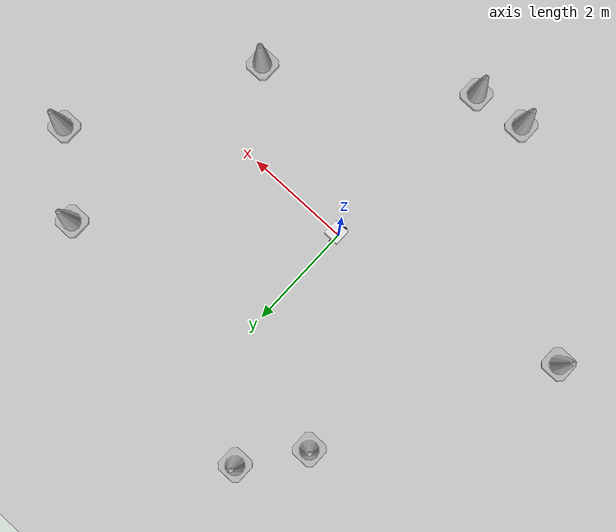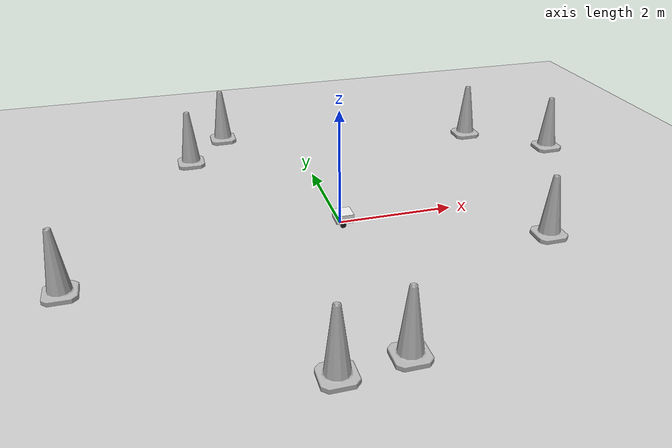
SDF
<sdf version="1.7">
 <world name="default">
  <light name="sun" type="directional">
   <pose>0 0 10 0 -0 0</pose>
   <diffuse>0.8 0.8 0.8 1</diffuse>
   <specular>0.2 0.2 0.2 1</specular>
   <attenuation>
    <range>1000</range>
    <constant>0.9</constant>
    <linear>0.01</linear>
    <quadratic>0.001</quadratic>
   </attenuation>
   <direction>-0.5 0.1 -0.9</direction>
   <spot><inner_angle>0</inner_angle><outer_angle>0</outer_angle><falloff>0</falloff></spot>
  </light>
  <model name="ground_plane">
   <static>1</static>
   <link name="link">
    <collision name="collision">
     <geometry><plane><normal>0 0 1</normal><size>100 100</size></plane></geometry>
     <surface><friction><ode><mu>100</mu><mu2>50</mu2></ode></friction></surface>
    </collision>
    <visual name="visual">
     <cast_shadows>0</cast_shadows>
     <geometry><plane><normal>0 0 1</normal><size>100 100</size></plane></geometry>
     <material>
      <script><uri>file://media/materials/scripts/gazebo.material</uri><name>Gazebo/Grey</name></script>
     </material>
    </visual>
   </link>
  </model>
  <gravity>0 0 -9.8</gravity>
  <magnetic_field>6e-06 2.3e-05 -4.2e-05</magnetic_field>
  <atmosphere type="adiabatic"/>
  <physics type="ode">
   <max_step_size>0.001</max_step_size>
   <real_time_factor>1</real_time_factor>
   <real_time_update_rate>1000</real_time_update_rate>
  </physics>
  <scene><ambient>0.4 0.4 0.4 1</ambient><background>0.7 0.7 0.7 1</background><shadows>1</shadows></scene>
  <spherical_coordinates>
   <surface_model>EARTH_WGS84</surface_model>
   <latitude_deg>0</latitude_deg>
   <longitude_deg>0</longitude_deg>
   <elevation>0</elevation>
   <heading_deg>0</heading_deg>
  </spherical_coordinates>
  <model name="my_bot">
   <link name="base_link">
    <inertial>
     <pose>0.065 0 0.0625 0 -0 0</pose>
     <mass>0.6</mass>
     <inertia>
      <ixx>0.00525625</ixx>
      <ixy>0</ixy>
      <ixz>0.0005625</ixz>
      <iyy>0.00593125</iyy>
      <iyz>0</iyz>
      <izz>0.008275</izz>
     </inertia>
    </inertial>
    <collision name="base_link_fixed_joint_lump__chassis_collision">
     <pose>0.05 0 0.075 0 -0 0</pose>
     <geometry><box><size>0.3 0.3 0.15</size></box></geometry>
    </collision>
    <collision name="base_link_fixed_joint_lump__caster_wheel_collision_1">
     <pose>0.14 0 0 0 -0 0</pose>
     <geometry><sphere><radius>0.05</radius></sphere></geometry>
     <surface><friction><ode><mu>0.001</mu><mu2>0.001</mu2></ode></friction></surface>
    </collision>
    <visual name="base_link_fixed_joint_lump__chassis_visual">
     <pose>0.05 0 0.075 0 -0 0</pose>
     <geometry><box><size>0.3 0.3 0.15</size></box></geometry>
     <material>
      <script><name>Gazebo/White</name><uri>file://media/materials/scripts/gazebo.material</uri></script>
     </material>
    </visual>
    <visual name="base_link_fixed_joint_lump__caster_wheel_visual_1">
     <pose>0.14 0 0 0 -0 0</pose>
     <geometry><sphere><radius>0.05</radius></sphere></geometry>
     <material>
      <script><name>Gazebo/Orange</name><uri>file://media/materials/scripts/gazebo.material</uri></script>
     </material>
    </visual>
   </link>
   <joint name="left_wheel_joint" type="revolute">
    <pose relative_to="base_link">0 0.175 0 -1.5708 0 0</pose>
    <parent>base_link</parent>
    <child>left_wheel</child>
    <axis>
     <xyz>0 0 1</xyz>
     <limit><lower>-1e+16</lower><upper>1e+16</upper></limit>
     <dynamics><spring_reference>0</spring_reference><spring_stiffness>0</spring_stiffness></dynamics>
    </axis>
   </joint>
   <link name="left_wheel">
    <pose relative_to="left_wheel_joint">0 0 0 0 -0 0</pose>
    <inertial>
     <mass>0.1</mass>
     <inertia>
      <ixx>7.58333e-05</ixx>
      <ixy>0</ixy>
      <ixz>0</ixz>
      <iyy>7.58333e-05</iyy>
      <iyz>0</iyz>
      <izz>0.000125</izz>
     </inertia>
    </inertial>
    <collision name="left_wheel_collision">
     <geometry><cylinder><length>0.04</length><radius>0.05</radius></cylinder></geometry>
    </collision>
    <visual name="left_wheel_visual">
     <geometry><cylinder><length>0.04</length><radius>0.05</radius></cylinder></geometry>
     <material>
      <script><name>Gazebo/Black</name><uri>file://media/materials/scripts/gazebo.material</uri></script>
     </material>
    </visual>
   </link>
   <joint name="right_wheel_joint" type="revolute">
    <pose relative_to="base_link">0 -0.175 0 1.5708 -0 0</pose>
    <parent>base_link</parent>
    <child>right_wheel</child>
    <axis>
     <xyz>0 0 -1</xyz>
     <limit><lower>-1e+16</lower><upper>1e+16</upper></limit>
     <dynamics><spring_reference>0</spring_reference><spring_stiffness>0</spring_stiffness></dynamics>
    </axis>
   </joint>
   <link name="right_wheel">
    <pose relative_to="right_wheel_joint">0 0 0 0 -0 0</pose>
    <inertial>
     <mass>0.1</mass>
     <inertia>
      <ixx>7.58333e-05</ixx>
      <ixy>0</ixy>
      <ixz>0</ixz>
      <iyy>7.58333e-05</iyy>
      <iyz>0</iyz>
      <izz>0.000125</izz>
     </inertia>
    </inertial>
    <collision name="right_wheel_collision">
     <geometry><cylinder><length>0.04</length><radius>0.05</radius></cylinder></geometry>
    </collision>
    <visual name="right_wheel_visual">
     <geometry><cylinder><length>0.04</length><radius>0.05</radius></cylinder></geometry>
     <material>
      <script><name>Gazebo/Black</name><uri>file://media/materials/scripts/gazebo.material</uri></script>
     </material>
    </visual>
   </link>
   <plugin name="diff_drive" filename="libgazebo_ros_diff_drive.so">
    <left_joint>left_wheel_joint</left_joint>
    <right_joint>right_wheel_joint</right_joint>
    <wheel_separation>0.35</wheel_separation>
    <wheel_diameter>0.1</wheel_diameter>
    <max_wheel_torque>200</max_wheel_torque>
    <max_wheel_acceleration>4.0</max_wheel_acceleration>
    <odometry_frame>odom</odometry_frame>
    <robot_base_frame>base_link</robot_base_frame>
    <publish_odom>1</publish_odom>
    <publish_odom_tf>1</publish_odom_tf>
    <publish_wheel_tf>1</publish_wheel_tf>
   </plugin>
   <frame name="caster_wheel_joint" attached_to="chassis"><pose>0.24 0 0 0 -0 0</pose></frame>
   <frame name="caster_wheel" attached_to="caster_wheel_joint"/>
   <frame name="chassis_joint" attached_to="base_link"><pose>-0.1 0 0 0 -0 0</pose></frame>
   <frame name="chassis" attached_to="chassis_joint"/>
   <pose>0.004464 1.4e-05 0.05 0 1e-06 1.5e-05</pose>
  </model>
  <model name="Construction Cone">
   <link name="link">
    <collision name="collision">
     <geometry>
      <mesh><scale>10 10 10</scale><uri>model://construction_cone/meshes/construction_cone.dae</uri></mesh>
     </geometry>
    </collision>
    <visual name="visual">
     <geometry>
      <mesh><scale>10 10 10</scale><uri>model://construction_cone/meshes/construction_cone.dae</uri></mesh>
     </geometry>
    </visual>
    <inertial>
     <inertia><ixx>1</ixx><ixy>0</ixy><ixz>0</ixz><iyy>1</iyy><iyz>0</iyz><izz>1</izz></inertia>
     <mass>1</mass>
    </inertial>
   </link>
   <pose>3.66976 3.06086 -0 0 -0 0</pose>
  </model>
  <model name="Construction Cone_0">
   <link name="link">
    <collision name="collision">
     <geometry>
      <mesh><scale>10 10 10</scale><uri>model://construction_cone/meshes/construction_cone.dae</uri></mesh>
     </geometry>
    </collision>
    <visual name="visual">
     <geometry>
      <mesh><scale>10 10 10</scale><uri>model://construction_cone/meshes/construction_cone.dae</uri></mesh>
     </geometry>
    </visual>
    <inertial>
     <inertia><ixx>1</ixx><ixy>0</ixy><ixz>0</ixz><iyy>1</iyy><iyz>0</iyz><izz>1</izz></inertia>
     <mass>1</mass>
    </inertial>
   </link>
   <pose>3.15653 -1.38089 -1e-05 -1e-06 0 0</pose>
  </model>
  <model name="Construction Cone_1">
   <link name="link">
    <collision name="collision">
     <geometry>
      <mesh><scale>10 10 10</scale><uri>model://construction_cone/meshes/construction_cone.dae</uri></mesh>
     </geometry>
    </collision>
    <visual name="visual">
     <geometry>
      <mesh><scale>10 10 10</scale><uri>model://construction_cone/meshes/construction_cone.dae</uri></mesh>
     </geometry>
    </visual>
    <inertial>
     <inertia><ixx>1</ixx><ixy>0</ixy><ixz>0</ixz><iyy>1</iyy><iyz>0</iyz><izz>1</izz></inertia>
     <mass>1</mass>
    </inertial>
   </link>
   <pose>-0.089022 -3.61701 -0 0 -0 0</pose>
  </model>
  <model name="Construction Cone_2">
   <link name="link">
    <collision name="collision">
     <geometry>
      <mesh><scale>10 10 10</scale><uri>model://construction_cone/meshes/construction_cone.dae</uri></mesh>
     </geometry>
    </collision>
    <visual name="visual">
     <geometry>
      <mesh><scale>10 10 10</scale><uri>model://construction_cone/meshes/construction_cone.dae</uri></mesh>
     </geometry>
    </visual>
    <inertial>
     <inertia><ixx>1</ixx><ixy>0</ixy><ixz>0</ixz><iyy>1</iyy><iyz>0</iyz><izz>1</izz></inertia>
     <mass>1</mass>
    </inertial>
   </link>
   <pose>-1.07475 -3.73477 -0 0 -1e-06 0</pose>
  </model>
  <model name="Construction Cone_3">
   <link name="link">
    <collision name="collision">
     <geometry>
      <mesh><scale>10 10 10</scale><uri>model://construction_cone/meshes/construction_cone.dae</uri></mesh>
     </geometry>
    </collision>
    <visual name="visual">
     <geometry>
      <mesh><scale>10 10 10</scale><uri>model://construction_cone/meshes/construction_cone.dae</uri></mesh>
     </geometry>
    </visual>
    <inertial>
     <inertia><ixx>1</ixx><ixy>0</ixy><ixz>0</ixz><iyy>1</iyy><iyz>0</iyz><izz>1</izz></inertia>
     <mass>1</mass>
    </inertial>
   </link>
   <pose>-1.42219 4.19433 -0 0 -1e-06 0</pose>
  </model>
  <model name="Construction Cone_4">
   <link name="link">
    <collision name="collision">
     <geometry>
      <mesh><scale>10 10 10</scale><uri>model://construction_cone/meshes/construction_cone.dae</uri></mesh>
     </geometry>
    </collision>
    <visual name="visual">
     <geometry>
      <mesh><scale>10 10 10</scale><uri>model://construction_cone/meshes/construction_cone.dae</uri></mesh>
     </geometry>
    </visual>
    <inertial>
     <inertia><ixx>1</ixx><ixy>0</ixy><ixz>0</ixz><iyy>1</iyy><iyz>0</iyz><izz>1</izz></inertia>
     <mass>1</mass>
    </inertial>
   </link>
   <pose>-2.18935 3.12191 -2e-06 -3e-06 -1e-06 -0</pose>
  </model>
  <model name="Construction Cone_5">
   <link name="link">
    <collision name="collision">
     <geometry>
      <mesh><scale>10 10 10</scale><uri>model://construction_cone/meshes/construction_cone.dae</uri></mesh>
     </geometry>
    </collision>
    <visual name="visual">
     <geometry>
      <mesh><scale>10 10 10</scale><uri>model://construction_cone/meshes/construction_cone.dae</uri></mesh>
     </geometry>
    </visual>
    <inertial>
     <inertia><ixx>1</ixx><ixy>0</ixy><ixz>0</ixz><iyy>1</iyy><iyz>0</iyz><izz>1</izz></inertia>
     <mass>1</mass>
    </inertial>
   </link>
   <pose>4.99362 1.91753 -0 0 -0 0</pose>
  </model>
  <model name="Construction Cone_6">
   <link name="link">
    <collision name="collision">
     <geometry>
      <mesh><scale>10 10 10</scale><uri>model://construction_cone/meshes/construction_cone.dae</uri></mesh>
     </geometry>
    </collision>
    <visual name="visual">
     <geometry>
      <mesh><scale>10 10 10</scale><uri>model://construction_cone/meshes/construction_cone.dae</uri></mesh>
     </geometry>
    </visual>
    <inertial>
     <inertia><ixx>1</ixx><ixy>0</ixy><ixz>0</ixz><iyy>1</iyy><iyz>0</iyz><izz>1</izz></inertia>
     <mass>1</mass>
    </inertial>
   </link>
   <pose>-4.40355 -0.951554 -0 0 -1e-06 0</pose>
  </model>
 </world>
</sdf>
